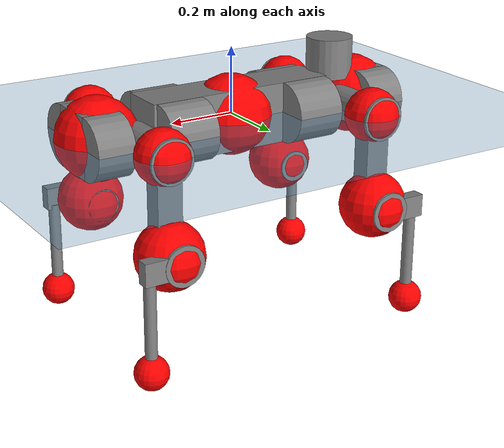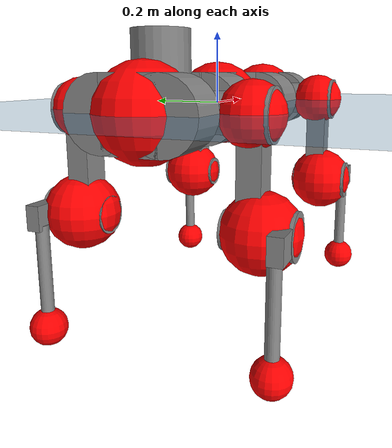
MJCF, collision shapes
<mujoco model="anymal_c">
  <compiler angle="radian" assetdir="assets" balanceinertia="true" inertiafromgeom="false"/>

  <option timestep="0.005" density="1.2" viscosity="2e-05"/>

  <size nkey="1"/>

  <visual>
    <quality shadowsize="8192"/>
    <map shadowclip="0.5"/>
  </visual>

  <default>
    <default class="/">
      <material specular="0" shininess="0.25"/>
      <geom contype="0" conaffinity="0" group="1" solref="-1000 -80"/>
      <site size="0.01 0.005 0.005" group="5"/>
      <general forcelimited="true" forcerange="-80 80" biastype="affine" gainprm="80" biasprm="0 -80 -2"/>
      <default class="anymal_c">
        <joint armature="0.01" damping="0.01" frictionloss="0.1"/>
        <default class="visual">
          <geom type="mesh" group="2"/>
          <default class="visual_zflip"/>
        </default>
        <default class="collision">
          <geom type="cylinder" group="3"/>
          <default class="foot">
            <geom size="0.03 0 0" type="sphere" condim="6" priority="1" friction="0.8 0.02 0.01" solimp="0.015 1 0.03"/>
          </default>
        </default>
      </default>
      <default class="reward_collision_sphere">
        <geom group="5" rgba="1 0 0 1"/>
      </default>
    </default>
  </default>

  <asset>
    <texture type="skybox" colorspace="auto" name="//unnamed_texture_0" builtin="gradient" rgb1="0.95 0.95 0.95" rgb2="0.95 0.95 0.95" width="100" height="600"/>
    <texture type="2d" colorspace="auto" name="texplane" builtin="checker" rgb1="0.345 0.575 0.748" rgb2="0.345 0.575 0.748" markrgb="1 1 1" width="512" height="512"/>
    <texture type="2d" colorspace="linear" name="base" file="base.png"/>
    <texture type="2d" colorspace="linear" name="top_shell" file="top_shell.png"/>
    <texture type="2d" colorspace="linear" name="bottom_shell" file="bottom_shell.png"/>
    <texture type="2d" colorspace="linear" name="remote" file="remote.png"/>
    <texture type="2d" colorspace="linear" name="hatch" file="hatch.png"/>
    <texture type="2d" colorspace="linear" name="handle" file="handle.png"/>
    <texture type="2d" colorspace="linear" name="face" file="face.png"/>
    <texture type="2d" colorspace="linear" name="battery" file="battery.png"/>
    <texture type="2d" colorspace="linear" name="lidar_cage" file="lidar_cage.png"/>
    <texture type="2d" colorspace="linear" name="depth_camera" file="depth_camera.png"/>
    <texture type="2d" colorspace="linear" name="wide_angle_camera" file="wide_angle_camera.png"/>
    <texture type="2d" colorspace="linear" name="lidar" file="lidar.png"/>
    <texture type="2d" colorspace="linear" name="drive" file="drive.png"/>
    <texture type="2d" colorspace="linear" name="hip_l" file="hip_l.png"/>
    <texture type="2d" colorspace="linear" name="shank_l" file="shank_l.png"/>
    <texture type="2d" colorspace="linear" name="foot" file="foot.png"/>
    <texture type="2d" colorspace="linear" name="thigh" file="thigh.png"/>
    <texture type="2d" colorspace="linear" name="shank_r" file="shank_r.png"/>
    <texture type="2d" colorspace="linear" name="hip_r" file="hip_r.png"/>
    <material name="MatPlane" class="/" texture="texplane" texuniform="true" texrepeat="2 2" specular="0.9" shininess="0.5"/>
    <material name="black_plastic" class="/" rgba="0.007 0.007 0.007 1"/>
    <material name="green" class="/" rgba="0.052 0.178 0.033 1"/>
    <material name="red" class="/" rgba="0.178 0.006 0.005 1"/>
    <material name="yellow" class="/" rgba="0.178 0.119 0.006 1"/>
    <material name="lwl" class="/" rgba="0.8 0.8 0.8 1"/>
    <material name="base" class="/" texture="base"/>
    <material name="top_shell" class="/" texture="top_shell"/>
    <material name="bottom_shell" class="/" texture="bottom_shell"/>
    <material name="hip_l" class="/" texture="hip_l"/>
    <material name="thigh" class="/" texture="thigh"/>
    <material name="shank_l" class="/" texture="shank_l"/>
    <material name="foot" class="/" texture="foot"/>
    <material name="hip_r" class="/" texture="hip_r"/>
    <material name="shank" class="/" texture="shank_r"/>
    <material name="hatch" class="/" texture="hatch"/>
    <material name="remote" class="/" texture="remote"/>
    <material name="handle" class="/" texture="handle"/>
    <material name="face" class="/" texture="face"/>
    <material name="depth_camera" class="/" texture="depth_camera"/>
    <material name="wide_angle_camera" class="/" texture="wide_angle_camera"/>
    <material name="battery" class="/" texture="battery"/>
    <material name="lidar_cage" class="/" texture="lidar_cage"/>
    <material name="lidar" class="/" texture="lidar"/>
    <material name="drive" class="/" texture="drive"/>
    <mesh name="base_0" class="/" file="base_0.obj"/>
    <mesh name="base_1" class="/" file="base_1.obj"/>
    <mesh name="base_2" class="/" file="base_2.obj"/>
    <mesh name="base_3" class="/" file="base_3.obj"/>
    <mesh name="base_4" class="/" file="base_4.obj"/>
    <mesh name="base_5" class="/" file="base_5.obj"/>
    <mesh name="top_shell" class="/" file="top_shell.obj"/>
    <mesh name="bottom_shell" class="/" file="bottom_shell.obj"/>
    <mesh name="remote" class="/" file="remote.obj"/>
    <mesh name="handle" class="/" file="handle.obj"/>
    <mesh name="face" class="/" file="face.obj"/>
    <mesh name="wide_angle_camera" class="/" file="wide_angle_camera.obj"/>
    <mesh name="depth_camera" class="/" file="depth_camera.obj"/>
    <mesh name="battery" class="/" file="battery.obj"/>
    <mesh name="lidar_cage" class="/" file="lidar_cage.obj"/>
    <mesh name="lidar" class="/" file="lidar.obj"/>
    <mesh name="drive" class="/" file="drive.obj"/>
    <mesh name="hip_l" class="/" file="hip_l.obj"/>
    <mesh name="thigh" class="/" file="thigh.obj"/>
    <mesh name="shank_l" class="/" file="shank_l.obj"/>
    <mesh name="foot" class="/" file="foot.obj"/>
    <mesh name="hip_r" class="/" file="hip_r.obj"/>
    <mesh name="hatch" class="/" file="hatch.obj"/>
    <mesh name="shank_r" class="/" file="shank_r.obj"/>
  </asset>

  <worldbody>
    <geom name="floor" class="/" size="100 100 0.125" type="plane" group="0" material="MatPlane"/>
    <light name="toplight_shadow" class="/" pos="0 0 5" dir="0.0990148 0.0990148 -0.990148" type="directional" ambient="0.04 0.04 0.04" diffuse="0.55 0.55 0.55" specular="0.12 0.12 0.12"/>
    <light name="toplight_fill" class="/" pos="0 0 5" dir="0.0990148 0.0990148 -0.990148" type="directional" castshadow="false" ambient="0.04 0.04 0.04" diffuse="0.3 0.3 0.3" specular="0.08 0.08 0.08"/>
    <body name="trunk" childclass="anymal_c" pos="0.000839989 -0.0020855 -0.00246504" quat="0.999999 0.000756349 -0.000681008 -0.000152402">
      <inertial pos="-0.000364463 0.00113094 0.0485119" quat="0.491742 0.503219 0.496761 0.508123" mass="20.0334" diaginertia="0.542955 0.966126 0.18356"/>
      <joint name="//unnamed_joint_0" type="free" armature="0" damping="0" frictionloss="0"/>
      <geom name="//unnamed_geom_1" class="visual" material="green" mesh="base_0"/>
      <geom name="//unnamed_geom_2" class="visual" material="yellow" mesh="base_1"/>
      <geom name="//unnamed_geom_3" class="visual" material="red" mesh="base_2"/>
      <geom name="//unnamed_geom_4" class="visual" material="black_plastic" mesh="base_3"/>
      <geom name="//unnamed_geom_5" class="visual" material="lwl" mesh="base_4"/>
      <geom name="//unnamed_geom_6" class="visual" material="base" mesh="base_5"/>
      <geom name="trunk_1" class="collision" size="0.29088 0.0702124 0.0902731" type="box"/>
      <geom name="trunk_2" class="collision" size="0.0902731 0.07272" pos="0.209228 0.076008 0" quat="0.707107 0 0.707107 0"/>
      <geom name="trunk_3" class="collision" size="0.0902731 0.07272" pos="-0.209228 0.076008 0" quat="0.707107 0 0.707107 0"/>
      <geom name="trunk_4" class="collision" size="0.0902731 0.07272" pos="0.209228 -0.076008 0" quat="0.707107 0 0.707107 0"/>
      <geom name="trunk_5" class="collision" size="0.0902731 0.07272" pos="-0.209228 -0.076008 0" quat="0.707107 0 0.707107 0"/>
      <geom name="//unnamed_geom_12" class="visual" material="top_shell" mesh="top_shell"/>
      <geom name="//unnamed_geom_13" class="visual" material="bottom_shell" mesh="bottom_shell"/>
      <geom name="//unnamed_geom_14" class="visual" material="remote" mesh="remote"/>
      <geom name="//unnamed_geom_15" class="visual" material="handle" mesh="handle"/>
      <geom name="//unnamed_geom_16" class="visual" pos="0.398735 0 0" quat="1 0 0 0" material="face" mesh="face"/>
      <geom name="trunk_6" class="collision" size="0.0551669 0.0702124 0.0902731" pos="0.451643 0 0" type="box"/>
      <geom name="//unnamed_geom_18" class="collision" size="0.0902731 0.0551669" pos="0.451643 0.076008 0" quat="0.707107 0 0.707107 0"/>
      <geom name="//unnamed_geom_19" class="collision" size="0.0902731 0.0551669" pos="0.451643 -0.076008 0" quat="0.707107 0 0.707107 0"/>
      <geom name="//unnamed_geom_20" class="visual" pos="0.444092 0 -0.0280652" quat="0.965926 0 0.258819 0" material="depth_camera" mesh="depth_camera"/>
      <geom name="//unnamed_geom_21" class="visual" pos="0.493489 0 0.0143908" material="wide_angle_camera" mesh="wide_angle_camera"/>
      <geom name="//unnamed_geom_22" class="visual_zflip" pos="-0.398735 0 0" quat="0 0 0 1" material="face" mesh="face"/>
      <geom name="trunk_7" class="collision" size="0.0551669 0.0702124 0.0902731" pos="-0.451643 0 0" quat="0 0 0 1" type="box"/>
      <geom name="//unnamed_geom_24" class="collision" size="0.0902731 0.0551669" pos="-0.451643 -0.076008 0" quat="0 -0.707107 0 0.707107"/>
      <geom name="//unnamed_geom_25" class="collision" size="0.0902731 0.0551669" pos="-0.451643 0.076008 0" quat="0 -0.707107 0 0.707107"/>
      <geom name="//unnamed_geom_26" class="visual" pos="-0.444092 0 -0.0280652" quat="0 -0.258819 0 0.965926" material="depth_camera" mesh="depth_camera"/>
      <geom name="//unnamed_geom_27" class="visual_zflip" pos="-0.493489 0 0.0143908" quat="0 0 0 1" material="wide_angle_camera" mesh="wide_angle_camera"/>
      <geom name="//unnamed_geom_28" class="visual" material="battery" mesh="battery"/>
      <geom name="//unnamed_geom_29" class="visual" pos="0 0.0846477 0.027931" quat="0.683013 -0.183013 0.183013 0.683013" material="depth_camera" mesh="depth_camera"/>
      <geom name="//unnamed_geom_30" class="visual" pos="0 -0.0846477 0.027931" quat="0.683013 0.183013 0.183013 -0.683013" material="depth_camera" mesh="depth_camera"/>
      <geom name="//unnamed_geom_31" class="visual" pos="-0.350156 0 0.0706561" quat="1 0 0 0" material="lidar_cage" mesh="lidar_cage"/>
      <geom name="trunk_8" class="collision" size="0.0702124 0.060182" pos="-0.350156 0 0.128335"/>
      <geom name="//unnamed_geom_33" class="visual" pos="-0.350156 4.8662e-05 0.136698" quat="0.707107 0 0 -0.707107" material="lidar" mesh="lidar"/>
      <geom name="//unnamed_geom_34" class="visual" pos="0.288494 0.112882 2.148e-09" quat="0.258819 0.965926 0 0" material="drive" mesh="drive"/>
      <geom name="//unnamed_geom_35" class="visual" pos="0.288494 -0.112882 -2.148e-09" quat="0.258819 -0.965926 0 0" material="drive" mesh="drive"/>
      <geom name="//unnamed_geom_36" class="visual" pos="-0.288494 0.112882 -2.148e-09" quat="0 0 0.965926 -0.258819" material="drive" mesh="drive"/>
      <geom name="//unnamed_geom_37" class="visual" pos="-0.288494 -0.112882 2.148e-09" quat="0 0 -0.965926 -0.258819" material="drive" mesh="drive"/>
      <geom name="//unnamed_geom_38" class="visual" pos="0.111588 0 0.0701754" quat="1 0 0 0" material="hatch" mesh="hatch"/>
      <geom name="//unnamed_geom_39" class="reward_collision_sphere" size="0.120364"/>
      <geom name="//unnamed_geom_40" class="reward_collision_sphere" size="0.120364" pos="0.432885 0 0"/>
      <geom name="//unnamed_geom_41" class="reward_collision_sphere" size="0.120364" pos="-0.432885 0 0"/>
      <site name="imu" pos="0.23924 0.00558726 0.0409463" size="0.0100303"/>
      <camera name="track" pos="0 -2.17166 0" quat="0.707107 0.707107 0 0" mode="trackcom"/>
      <camera name="ego_camera" pos="0.432885 0 -0.0384523" quat="-0.5 -0.5 0.5 0.5"/>
      <body name="LF_HIP" pos="0.289111 0.113884 0.00136665" quat="0.259009 0.965875 -0.000425182 -0.000174725">
        <inertial pos="0.0546629 -0.0174227 -0.00792569" quat="-0.123334 0.705105 -0.142223 0.683658" mass="2.82778" diaginertia="0.00495703 0.00731178 0.00278424"/>
        <joint name="LF_HAA" pos="0 0 0" axis="0.999865 0.00135586 0.0163704" range="-0.772377 0.461282" armature="0.0104595" damping="0.00493039" frictionloss="0.103148"/>
        <geom name="//unnamed_geom_42" class="visual" pos="0 0.000126357 -2.0754e-05" quat="0.258819 -0.965926 0 0" material="hip_l" mesh="hip_l"/>
        <geom name="//unnamed_geom_43" class="visual" pos="0.0576218 -0.0714076 -0.0403062" quat="0.183013 -0.683013 0.683013 0.183013" material="drive" mesh="drive"/>
        <geom name="//unnamed_geom_44" class="collision" size="0.0501517 0.0702124" pos="0.0576218 -0.0129863 -0.00663783" quat="-0.353553 -0.612372 0.612372 -0.353553"/>
        <body name="LF_THIGH" pos="0.058773 -0.0762363 -0.0374161" quat="0.183083 -0.683496 0.682602 0.182668">
          <inertial pos="0.0305956 -0.00140381 -0.237227" quat="0.993069 0.00630313 -0.0864822 0.0793435" mass="3.1807" diaginertia="0.0246689 0.0442915 0.00342479"/>
          <joint name="LF_HFE" pos="0 0 0" axis="0.999954 -0.00953557 -0.000844418" stiffness="0.0141864" range="-3.18223 3.14584" armature="0.00944834" damping="0.013197" frictionloss="0.0874624"/>
          <geom name="//unnamed_geom_45" class="visual" pos="-0.00246436 -3.88326e-06 0" quat="0.707107 0 0 -0.707107" material="thigh" mesh="thigh"/>
          <geom name="//unnamed_geom_46" class="collision" size="0.0651972 0.0401214" pos="0.0384787 0 0" quat="0.5 0.5 -0.5 -0.5"/>
          <geom name="//unnamed_geom_47" class="collision" size="0.0376138 0.030091 0.141743" pos="0.028859 0 -0.135846" quat="0.707107 0 0 -0.707107" type="box"/>
          <geom name="//unnamed_geom_48" class="visual" pos="0.0964852 0 -0.273973" quat="1 0 0 0" material="drive" mesh="drive"/>
          <geom name="//unnamed_geom_49" class="collision" size="0.0501517 0.0702124" pos="0.0291476 0 -0.273973" quat="0.707107 0 0.707107 0"/>
          <geom name="//unnamed_geom_50" class="reward_collision_sphere" size="0.0802427" pos="0.0240492 0 0"/>
          <body name="LF_SHANK" pos="0.0975526 0.000827213 -0.275037" quat="1 -5.20448e-05 -1.10988e-05 5.3588e-05">
            <inertial pos="0.00501761 -0.0687605 -0.0786632" quat="0.993207 -0.112582 -0.0139288 -0.0259243" mass="0.595614" diaginertia="0.00816591 0.0134976 0.000892471"/>
            <joint name="LF_KFE" pos="0 0 0" axis="0.999984 0.00558142 0.00114098" stiffness="0.00717314" range="-3.16933 3.16449" armature="0.008631" damping="0.00445284" frictionloss="0.113052"/>
            <geom name="//unnamed_geom_51" class="visual" pos="-0.000803576 -0.00428471 0" quat="0.707107 0 0 -0.707107" material="shank_l" mesh="shank_l"/>
            <geom name="LF_kfe_act" class="collision" size="0.060182 0.0200607" pos="0.0192393 0 0" quat="0.5 0.5 -0.5 -0.5"/>
            <geom name="//unnamed_geom_53" class="collision" size="0.0576735 0.0338524 0.0190576" pos="0.0192393 -0.062434 0" quat="0.5 0.5 -0.5 -0.5" type="box"/>
            <geom name="//unnamed_geom_54" class="visual" pos="0.0125539 -0.0968794 -0.324893" quat="0.382683 0 0 -0.92388" material="foot" mesh="foot"/>
            <geom name="LF_calf" class="collision" size="0.0175531 0.141681" pos="0.0125537 -0.0954986 -0.162447" quat="0.707107 0 0 -0.707107"/>
            <geom name="LF_foot" class="foot" size="0.0279797" pos="0.0125537 -0.0954986 -0.303264" quat="0.707107 0 0 -0.707107"/>
            <geom name="//unnamed_geom_57" class="reward_collision_sphere" size="0.100303" pos="-0.0480983 0 0"/>
            <geom name="//unnamed_geom_58" class="reward_collision_sphere" size="0.0501517" pos="0.0125537 -0.0954986 -0.303264"/>
            <site name="LF_foot" class="foot" pos="0.0125537 -0.0954986 -0.303264" quat="0.707107 0 0 -0.707107" size="0.0100303"/>
          </body>
        </body>
      </body>
      <body name="RF_HIP" pos="0.289908 -0.115906 0.00443304" quat="0.258621 -0.965978 -0.000492674 -0.000911167">
        <inertial pos="0.0540412 0.0199029 -0.0106358" quat="0.135334 0.679102 0.128045 0.710007" mass="2.67996" diaginertia="0.0046623 0.00743041 0.00275884"/>
        <joint name="RF_HAA" pos="0 0 0" axis="0.999898 -0.0062663 -0.0128223" stiffness="0.00919126" range="-0.497772 0.732577" armature="0.00868081" damping="0.00583989" frictionloss="0.1119"/>
        <geom name="//unnamed_geom_59" class="visual" pos="0 -0.000126356 -2.0754e-05" quat="0.258819 0.965926 0 0" material="hip_r" mesh="hip_r"/>
        <geom name="//unnamed_geom_60" class="visual" pos="0.0576218 0.0714076 -0.0403062" quat="0.183013 0.683013 0.683013 -0.183013" material="drive" mesh="drive"/>
        <geom name="//unnamed_geom_61" class="collision" size="0.0501517 0.0702124" pos="0.0576218 0.0129863 -0.00663783" quat="-0.353553 0.612372 0.612372 0.353553"/>
        <body name="RF_THIGH" pos="0.0551451 0.0751443 -0.0395272" quat="0.183361 0.682769 0.683277 -0.182587">
          <inertial pos="0.0324136 -0.00227228 -0.236451" quat="0.99199 -0.00078455 -0.0927739 0.0857246" mass="3.17048" diaginertia="0.0241242 0.0448269 0.00341308"/>
          <joint name="RF_HFE" pos="0 0 0" axis="0.999997 -0.00064863 -0.00223804" range="-3.12377 3.19197" armature="0.00997184" damping="0.010649" frictionloss="0.0886232"/>
          <geom name="//unnamed_geom_62" class="visual" pos="-0.00246436 -3.88326e-06 0" quat="0.707107 0 0 -0.707107" material="thigh" mesh="thigh"/>
          <geom name="//unnamed_geom_63" class="collision" size="0.0651972 0.0401214" pos="0.0384787 0 0" quat="0.5 0.5 0.5 0.5"/>
          <geom name="//unnamed_geom_64" class="collision" size="0.0376138 0.030091 0.141743" pos="0.028859 0 -0.135846" quat="0.707107 0 0 0.707107" type="box"/>
          <geom name="//unnamed_geom_65" class="visual" pos="0.0964852 0 -0.273973" quat="1 0 0 0" material="drive" mesh="drive"/>
          <geom name="//unnamed_geom_66" class="collision" size="0.0501517 0.0702124" pos="0.0291476 0 -0.273973" quat="0.707107 0 0.707107 0"/>
          <geom name="//unnamed_geom_67" class="reward_collision_sphere" size="0.0802427" pos="0.0240492 0 0"/>
          <body name="RF_SHANK" pos="0.0931442 0.00192365 -0.27493" quat="1 -0.000211265 0.000225711 -0.000778197">
            <inertial pos="0.00302691 0.0686476 -0.0781507" quat="0.993121 0.115679 0.00886367 0.015825" mass="0.585106" diaginertia="0.00795118 0.0140282 0.000876346"/>
            <joint name="RF_KFE" pos="0 0 0" axis="1 3.58283e-05 7.84785e-06" range="-3.07766 3.18009" armature="0.00963125" damping="0.0115394" frictionloss="0.0868202"/>
            <geom name="//unnamed_geom_68" class="visual" pos="-0.000803571 0.0042847 0" quat="0.707107 0 0 0.707107" material="shank" mesh="shank_r"/>
            <geom name="RF_kfe_act" class="collision" size="0.060182 0.0200607" pos="0.0192393 0 0" quat="0.5 0.5 0.5 0.5"/>
            <geom name="//unnamed_geom_70" class="collision" size="0.0576735 0.0338524 0.0190576" pos="0.0192393 0.062434 0" quat="0.5 0.5 0.5 0.5" type="box"/>
            <geom name="//unnamed_geom_71" class="visual" pos="0.0125535 0.0968794 -0.324893" quat="0.382683 0 0 0.92388" material="foot" mesh="foot"/>
            <geom name="RF_calf" class="collision" size="0.0175531 0.141681" pos="0.0125537 0.0954986 -0.162447" quat="0.707107 0 0 0.707107"/>
            <geom name="RF_foot" class="foot" size="0.0321697" pos="0.0125537 0.0954986 -0.303264" quat="0.707107 0 0 0.707107"/>
            <geom name="//unnamed_geom_74" class="reward_collision_sphere" size="0.100303" pos="-0.0480983 0 0"/>
            <geom name="//unnamed_geom_75" class="reward_collision_sphere" size="0.0501517" pos="0.0125537 0.0954986 -0.303264"/>
            <site name="RF_foot" class="foot" pos="0.0125537 0.0954986 -0.303264" quat="0.707107 0 0 0.707107" size="0.0100303"/>
          </body>
        </body>
      </body>
      <body name="LH_HIP" pos="-0.287786 0.116043 0.00261683" quat="0.000198691 6.62416e-05 0.965988 -0.258586">
        <inertial pos="0.0561513 0.0144353 -0.00570671" quat="0.128527 0.681811 0.133538 0.70766" mass="2.76435" diaginertia="0.00457502 0.00692877 0.00269147"/>
        <joint name="LH_HAA" pos="0 0 0" axis="0.99993 0.0117297 0.00169683" range="-0.477128 0.67107" armature="0.00909834" damping="0.0128501" frictionloss="0.107391"/>
        <geom name="//unnamed_geom_76" class="visual" pos="0 -0.000126356 -2.0754e-05" quat="-0.258819 -0.965926 0 0" material="hip_r" mesh="hip_r"/>
        <geom name="//unnamed_geom_77" class="visual" pos="0.0576218 0.0714076 -0.0403062" quat="0.183013 0.683013 0.683013 -0.183013" material="drive" mesh="drive"/>
        <geom name="//unnamed_geom_78" class="collision" size="0.0501517 0.0702124" pos="0.0576218 0.0129863 -0.00663783" quat="-0.353553 0.612372 0.612372 0.353553"/>
        <body name="LH_THIGH" pos="0.0569928 0.07563 -0.0404199" quat="0.183064 0.683003 0.683055 -0.182839">
          <inertial pos="0.0287774 -0.00199739 -0.233338" quat="0.993203 -0.00649062 -0.0825017 0.0818495" mass="3.12759" diaginertia="0.0240306 0.0463965 0.00343504"/>
          <joint name="LH_HFE" pos="0 0 0" axis="0.999964 0.00849009 0.000535885" range="-3.15434 3.15797" armature="0.0110889" damping="0.0159825" frictionloss="0.0874973"/>
          <geom name="//unnamed_geom_79" class="visual" pos="-0.00246436 -3.88326e-06 0" quat="0.707107 0 0 -0.707107" material="thigh" mesh="thigh"/>
          <geom name="//unnamed_geom_80" class="collision" size="0.0651972 0.0401214" pos="0.0384787 0 0" quat="0.5 0.5 -0.5 -0.5"/>
          <geom name="//unnamed_geom_81" class="collision" size="0.0376138 0.030091 0.141743" pos="0.028859 0 -0.135846" quat="0.707107 0 0 -0.707107" type="box"/>
          <geom name="//unnamed_geom_82" class="visual" pos="0.0964852 0 -0.273973" quat="1 0 0 0" material="drive" mesh="drive"/>
          <geom name="//unnamed_geom_83" class="collision" size="0.0501517 0.0702124" pos="0.0291476 0 -0.273973" quat="0.707107 0 0.707107 0"/>
          <geom name="//unnamed_geom_84" class="reward_collision_sphere" size="0.0802427" pos="0.0240492 0 0"/>
          <body name="LH_SHANK" pos="0.0941844 -0.000741796 -0.271462" quat="0.999999 -0.00011044 -0.000709494 0.00104487">
            <inertial pos="0.00492035 0.067378 -0.0773321" quat="0.992692 0.117995 -0.0029272 0.0251335" mass="0.583038" diaginertia="0.00828992 0.0138293 0.000915183"/>
            <joint name="LH_KFE" pos="0 0 0" axis="0.999995 -0.00200109 0.00251242" range="-3.16299 3.13959" armature="0.0093164" damping="0.0158526" frictionloss="0.0891499"/>
            <geom name="//unnamed_geom_85" class="visual" pos="-0.000803571 0.0042847 0" quat="-0.707107 0 0 -0.707107" material="shank" mesh="shank_r"/>
            <geom name="LH_kfe_act" class="collision" size="0.060182 0.0200607" pos="0.0192393 0 0" quat="0.5 0.5 -0.5 -0.5"/>
            <geom name="//unnamed_geom_87" class="collision" size="0.0576735 0.0338524 0.0190576" pos="0.0192393 0.062434 0" quat="0.5 0.5 -0.5 -0.5" type="box"/>
            <geom name="//unnamed_geom_88" class="visual" pos="0.0125535 0.0968794 -0.324893" quat="-0.382683 0 0 -0.92388" material="foot" mesh="foot"/>
            <geom name="LH_calf" class="collision" size="0.0175531 0.141681" pos="0.0125537 0.0954986 -0.162447" quat="0.707107 0 0 -0.707107"/>
            <geom name="LH_foot" class="foot" size="0.0317471" pos="0.0125537 0.0954986 -0.303264" quat="0.707107 0 0 -0.707107"/>
            <geom name="//unnamed_geom_91" class="reward_collision_sphere" size="0.100303" pos="-0.0480983 0 0"/>
            <geom name="//unnamed_geom_92" class="reward_collision_sphere" size="0.0501517" pos="0.0125537 0.0954986 -0.303264"/>
            <site name="LH_foot" class="foot" pos="0.0125537 0.0954986 -0.303264" quat="0.707107 0 0 -0.707107" size="0.0100303"/>
          </body>
        </body>
      </body>
      <body name="RH_HIP" pos="-0.287244 -0.111319 8.92063e-05" quat="-8.7418e-05 0.000607529 -0.965769 -0.259405">
        <inertial pos="0.0538277 -0.0191256 -0.00905078" quat="-0.128358 0.711746 -0.133588 0.677567" mass="2.69908" diaginertia="0.00464507 0.00739285 0.00254487"/>
        <joint name="RH_HAA" pos="0 0 0" axis="1 2.36082e-06 5.73193e-06" range="-0.757727 0.531496" armature="0.00990992" damping="0.00486394" frictionloss="0.112178"/>
        <geom name="//unnamed_geom_93" class="visual" pos="0 0.000126357 -2.0754e-05" quat="-0.258819 0.965926 0 0" material="hip_l" mesh="hip_l"/>
        <geom name="//unnamed_geom_94" class="visual" pos="0.0576218 -0.0714076 -0.0403062" quat="-0.183013 0.683013 -0.683013 -0.183013" material="drive" mesh="drive"/>
        <geom name="//unnamed_geom_95" class="collision" size="0.0501517 0.0702124" pos="0.0576218 -0.0129863 -0.00663783" quat="0.353553 0.612372 -0.612372 0.353553"/>
        <body name="RH_THIGH" pos="0.0554779 -0.0774171 -0.0415404" quat="-0.182048 0.683649 -0.682534 -0.183385">
          <inertial pos="0.0294198 -0.00155517 -0.235443" quat="0.992885 -0.00283203 -0.080237 0.0879363" mass="3.26678" diaginertia="0.0254498 0.0448323 0.0034212"/>
          <joint name="RH_HFE" pos="0 0 0" axis="0.999982 0.00584109 -0.00166276" stiffness="0.00107256" range="-3.15311 3.10836" armature="0.0106053" damping="0.0129236" frictionloss="0.102747"/>
          <geom name="//unnamed_geom_96" class="visual" pos="-0.00246436 -3.88326e-06 0" quat="0.707107 0 0 -0.707107" material="thigh" mesh="thigh"/>
          <geom name="//unnamed_geom_97" class="collision" size="0.0651972 0.0401214" pos="0.0384787 0 0" quat="0.5 0.5 0.5 0.5"/>
          <geom name="//unnamed_geom_98" class="collision" size="0.0376138 0.030091 0.141743" pos="0.028859 0 -0.135846" quat="0.707107 0 0 0.707107" type="box"/>
          <geom name="//unnamed_geom_99" class="visual" pos="0.0964852 0 -0.273973" quat="1 0 0 0" material="drive" mesh="drive"/>
          <geom name="//unnamed_geom_100" class="collision" size="0.0501517 0.0702124" pos="0.0291476 0 -0.273973" quat="0.707107 0 0.707107 0"/>
          <geom name="//unnamed_geom_101" class="reward_collision_sphere" size="0.0802427" pos="0.0240492 0 0"/>
          <body name="RH_SHANK" pos="0.0987801 0.000290085 -0.272373" quat="1 -2.81589e-06 -4.37434e-06 -4.52711e-06">
            <inertial pos="0.00278381 -0.065181 -0.0774936" quat="0.993167 -0.11418 -0.00129406 -0.0241108" mass="0.612947" diaginertia="0.00866764 0.014506 0.000925025"/>
            <joint name="RH_KFE" pos="0 0 0" axis="0.999986 -0.00224983 0.00473768" stiffness="0.00526882" range="-3.13271 3.18943" armature="0.00997471" damping="0.00285677" frictionloss="0.113299"/>
            <geom name="//unnamed_geom_102" class="visual" pos="-0.000803576 -0.00428471 0" quat="0.707107 0 0 -0.707107" material="shank_l" mesh="shank_l"/>
            <geom name="RH_kfe_act" class="collision" size="0.060182 0.0200607" pos="0.0192393 0 0" quat="0.5 0.5 0.5 0.5"/>
            <geom name="//unnamed_geom_104" class="collision" size="0.0576735 0.0338524 0.0190576" pos="0.0192393 -0.062434 0" quat="0.5 0.5 0.5 0.5" type="box"/>
            <geom name="//unnamed_geom_105" class="visual" pos="0.0125539 -0.0968794 -0.324893" quat="0.382683 0 0 -0.92388" material="foot" mesh="foot"/>
            <geom name="RH_calf" class="collision" size="0.0175531 0.141681" pos="0.0125537 -0.0954986 -0.162447" quat="0.707107 0 0 0.707107"/>
            <geom name="RH_foot" class="foot" size="0.0277876" pos="0.0125537 -0.0954986 -0.303264" quat="0.707107 0 0 0.707107"/>
            <geom name="//unnamed_geom_108" class="reward_collision_sphere" size="0.100303" pos="-0.0480983 0 0"/>
            <geom name="//unnamed_geom_109" class="reward_collision_sphere" size="0.0501517" pos="0.0125537 -0.0954986 -0.303264"/>
            <site name="RH_foot" class="foot" pos="0.0125537 -0.0954986 -0.303264" quat="0.707107 0 0 0.707107" size="0.0100303"/>
          </body>
        </body>
      </body>
    </body>
  </worldbody>

  <contact>
    <pair class="/" geom1="floor" geom2="LF_foot" name="//unnamed_contact_0"/>
    <pair class="/" geom1="floor" geom2="RF_foot" name="//unnamed_contact_1"/>
    <pair class="/" geom1="floor" geom2="LH_foot" name="//unnamed_contact_2"/>
    <pair class="/" geom1="floor" geom2="RH_foot" name="//unnamed_contact_3"/>
  </contact>

  <actuator>
    <general name="LF_HAA" class="/" joint="LF_HAA" forcerange="-89.3921 89.3921" gainprm="81.8538" biasprm="0 -81.8538 -2.25732"/>
    <general name="LF_HFE" class="/" joint="LF_HFE" forcerange="-80.4957 80.4957" gainprm="81.8538" biasprm="0 -81.8538 -2.25732"/>
    <general name="LF_KFE" class="/" joint="LF_KFE" forcerange="-79.2979 79.2979" gainprm="81.8538" biasprm="0 -81.8538 -2.25732"/>
    <general name="RF_HAA" class="/" joint="RF_HAA" forcerange="-72.3261 72.3261" gainprm="81.8538" biasprm="0 -81.8538 -2.25732"/>
    <general name="RF_HFE" class="/" joint="RF_HFE" forcerange="-81.6776 81.6776" gainprm="81.8538" biasprm="0 -81.8538 -2.25732"/>
    <general name="RF_KFE" class="/" joint="RF_KFE" forcerange="-75.4062 75.4062" gainprm="81.8538" biasprm="0 -81.8538 -2.25732"/>
    <general name="LH_HAA" class="/" joint="LH_HAA" forcerange="-74.0713 74.0713" gainprm="81.8538" biasprm="0 -81.8538 -2.25732"/>
    <general name="LH_HFE" class="/" joint="LH_HFE" forcerange="-80.1406 80.1406" gainprm="81.8538" biasprm="0 -81.8538 -2.25732"/>
    <general name="LH_KFE" class="/" joint="LH_KFE" forcerange="-89.2974 89.2974" gainprm="81.8538" biasprm="0 -81.8538 -2.25732"/>
    <general name="RH_HAA" class="/" joint="RH_HAA" forcerange="-72.5778 72.5778" gainprm="81.8538" biasprm="0 -81.8538 -2.25732"/>
    <general name="RH_HFE" class="/" joint="RH_HFE" forcerange="-89.1225 89.1225" gainprm="81.8538" biasprm="0 -81.8538 -2.25732"/>
    <general name="RH_KFE" class="/" joint="RH_KFE" forcerange="-80.7192 80.7192" gainprm="81.8538" biasprm="0 -81.8538 -2.25732"/>
  </actuator>

  <sensor>
    <gyro site="imu" name="imu_angular_velocity"/>
    <velocimeter site="imu" name="imu_linear_velocity"/>
    <framelinvel objtype="site" objname="LF_foot" name="LF_foot_global_linear_velocity"/>
    <framelinvel objtype="site" objname="RF_foot" name="RF_foot_global_linear_velocity"/>
    <framelinvel objtype="site" objname="LH_foot" name="LH_foot_global_linear_velocity"/>
    <framelinvel objtype="site" objname="RH_foot" name="RH_foot_global_linear_velocity"/>
  </sensor>

  <keyframe>
    <key name="home" qpos="0 0 0.55 1 0 0 0 0 0.4 -0.8 0 -0.4 0.8 0 -0.4 0.8 0 0.4 -0.8"/>
  </keyframe>
</mujoco>
